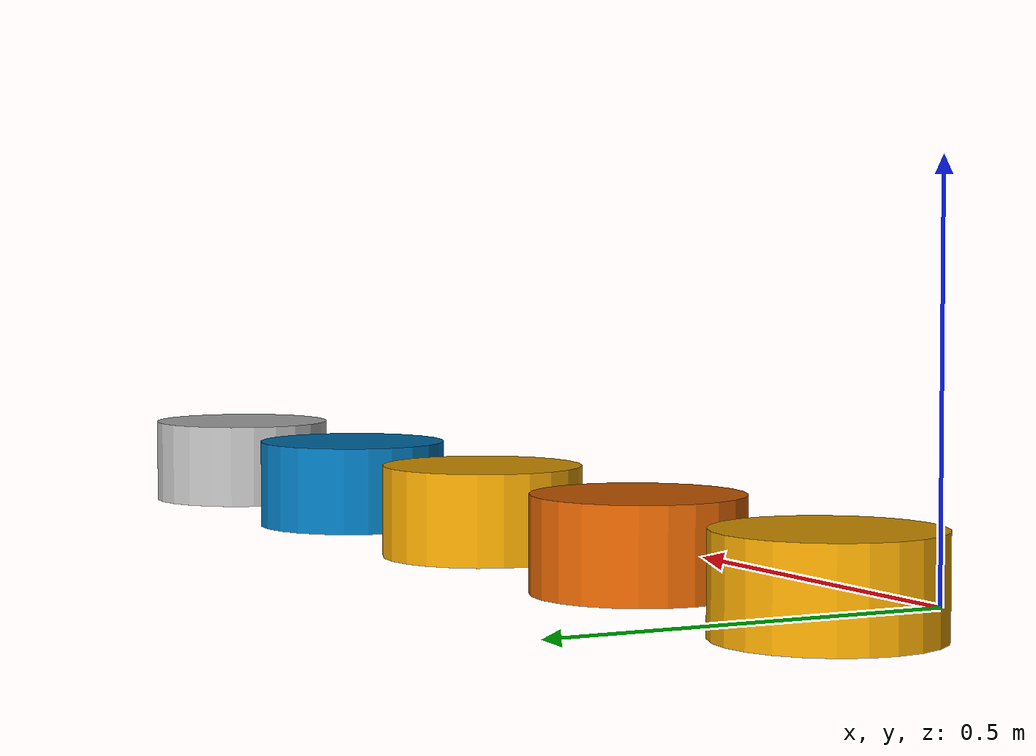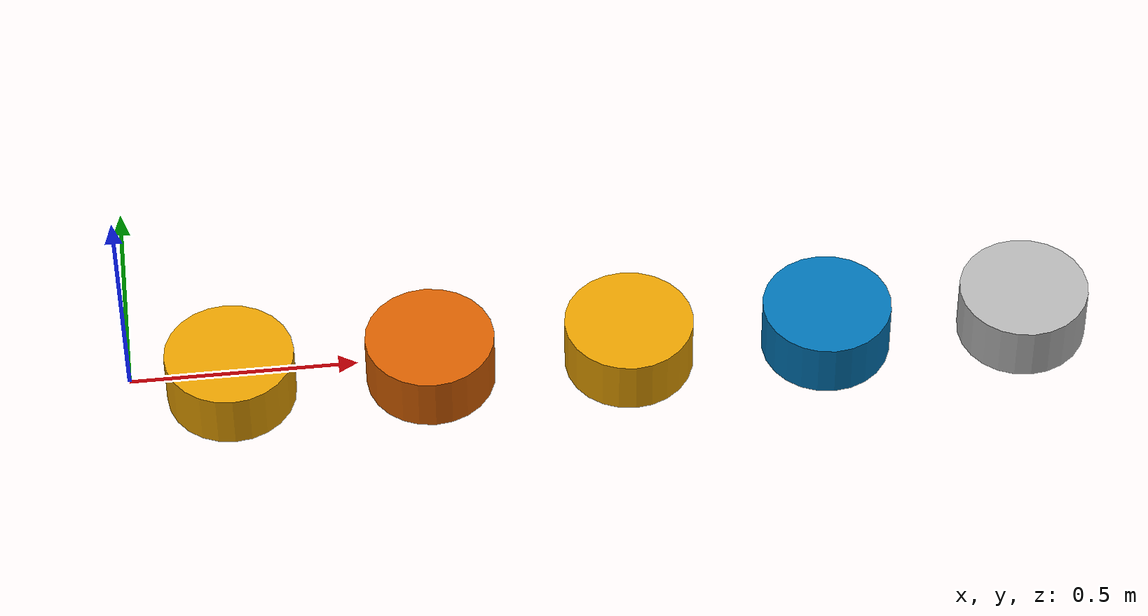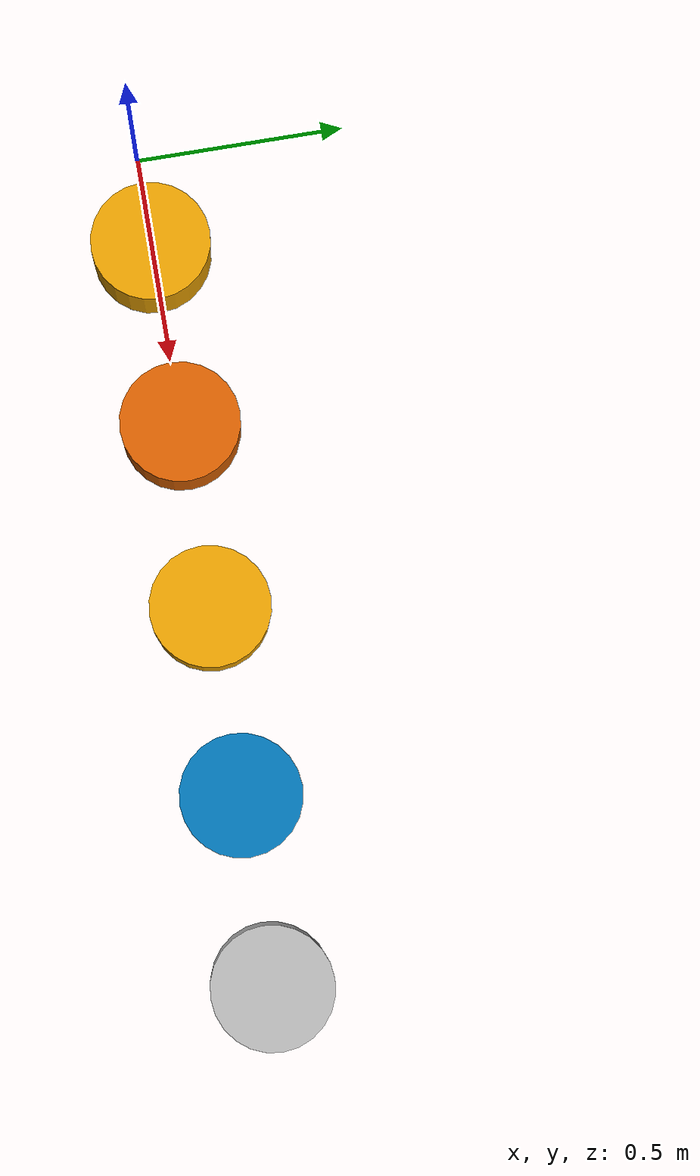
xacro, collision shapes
<?xml version="1.0"?>
<robot
    xmlns:xacro="http://www.ros.org/wiki/xacro" name="hydrus3" >

  <xacro:include filename="$(find hydrus)/urdf/hydrus3/hydrus3_common.xacro" />
  <xacro:include filename="$(find hydrus)/urdf/hydrus3/hydrus3_link.urdf.xacro" />

  <xacro:hydrus3_link self="1" child="2" rotor_direction="-1" general="false" fc="false" pc="true"  />
  <xacro:hydrus3_link self="2" child="3" rotor_direction="1" general="true" fc="false" pc="false" />
  <xacro:hydrus3_link self="3" child="4" rotor_direction="-1" general="false" fc="true" pc="false" />
  <xacro:hydrus3_link self="4" child="5" rotor_direction="1" general="true" fc="false" pc="false" />
  <xacro:hydrus3_link self="5" child="5" rotor_direction="-1" general="false" fc="false" pc="false" />

</robot>

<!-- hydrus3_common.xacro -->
<robot
    xmlns:xacro="http://www.ros.org/wiki/xacro" name="hydrus3_common" >

  <xacro:property name="pi" value="3.1415926535897931" />
  <!-- kinematics [m] -->
  <xacro:property name="link_length" value=".44" />
  <xacro:property name="link_rod_length" value=".4" />
  <xacro:property name="protector_radius" value=".1425" />
  <xacro:property name="link_joint_offset" value="-0.205" />
  <xacro:property name="rotor_radius" value=".015" />
  <xacro:property name="rotor_height" value=".05" />
  <xacro:property name="pc_offset" value="-0.189" /> <!-- from link_cetner -->
  <xacro:property name="fc_offset" value="0.166" /> <!-- from link_cetner -->

  <!-- inertial parameter -->
  <!-- mass [Kg] -->
  <xacro:property name="link_rod_mass" value="0.1" />
  <xacro:property name="link_center_mass" value=".241" />
  <xacro:property name="joint_mass" value=".0785" />
  <xacro:property name="protector_mass" value=".048" />
  <xacro:property name="protector_holder_mass" value=".047" />
  <xacro:property name="fc_mass" value=".022" />
  <xacro:property name="pc_mass" value=".104" />
  <xacro:property name="rotor_mass" value=".05" /> <!-- exclude from center mass -->

  <!-- inertial [N*m*m] -->
  <xacro:property name="link_rod_inertia" value="${link_rod_mass * link_rod_length * link_rod_length /12}" /> <!-- mass * dist * dist -->
  <xacro:property name="protector_inertia" value="${protector_mass * protector_radius * protector_radius}" /> <!-- mass * dist * dist -->
  <xacro:property name="protector_holder_inertia" value="${protector_holder_mass * protector_radius * protector_radius}" /> <!-- mass * dist * dist -->

  <!-- dynamics [N] -->
  <xacro:property name="max_force" value="10" />

  <xacro:macro name="link_model" params="type">
    <collision>
      <origin rpy="0 0 0" xyz="${link_length* 0.5} 0 0"/>
      <geometry>
        <cylinder length="0.13" radius="${protector_radius}"/>
      </geometry>
    </collision>

    <visual>
      <origin rpy="${-pi/2} 0 0" xyz="${link_length* 0.5} 0 0"/>
      <geometry>
        <mesh filename="package://hydrus/urdf/hydrus3/mesh/hydrus3_link${type}.dae"/>
      </geometry>
    </visual>
  </xacro:macro>

  <xacro:macro name="extra_module" params="name parent mass offset">
    <joint name="link2${name}" type="fixed">
      <parent link="link${parent}"/>
      <child link="${name}"/>
      <origin rpy="0 0 0" xyz="${offset} 0 0"/>
      <axis xyz="0 0 1"/>
    </joint>
    <link name="${name}">
      <inertial>
        <origin xyz="0 0 0" rpy="0 0 0"/>
        <mass value="${mass}"/>
        <inertia
            ixx="0.00001" ixy="0.0" ixz="0.0"
            iyy="0.00001" iyz="0.0"
            izz="0.00002"/>
      </inertial>
    </link>
  </xacro:macro>

  <!-- friction -->
  <xacro:macro name="friction" params="self">
    <gazebo reference="link${self}">
      <mu1>0.0001</mu1>
      <mu2>0.0001</mu2>
    </gazebo>
  </xacro:macro>

  <xacro:macro name="damping_factor" params="link">
    <gazebo reference="${link}">
      <dampingFactor>0.00</dampingFactor>
    </gazebo>
  </xacro:macro>

</robot>

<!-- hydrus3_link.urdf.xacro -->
<robot
    xmlns:xacro="http://www.ros.org/wiki/xacro" name="hydrus3_link" >

  <!-- D-H kai description(different from prof.nakamura) -->
  <xacro:macro name="hydrus3_link" params="self child rotor_direction general fc pc">

    <!-- link -->
    <link name="link${self}">
      <!-- common inertial -->
      <inertial>
        <origin xyz="${link_length* 0.5} 0 0" rpy="0 0 0"/>
        <mass value="${link_rod_mass + link_center_mass + protector_mass + protector_holder_mass - rotor_mass}" /> <!-- exclude from center mass -->
        <inertia
            ixx="${protector_inertia / 2}" ixy="0.0" ixz="0.0"
            iyy="${link_rod_inertia + protector_holder_inertia + protector_inertia /2}" iyz="0.0"
            izz="${link_rod_inertia + protector_holder_inertia + protector_inertia}"/>
      </inertial>

      <!-- sepcial inertia & visual & collision -->
      <!-- head -->
      <xacro:if value="${self == 1}">
        <xacro:link_model type="1" />
      </xacro:if>

      <!-- tail -->
      <xacro:if value="${self == child}">
        <xacro:link_model type="4" />
      </xacro:if>

      <!-- fc -->
      <xacro:if value="${fc}">
        <xacro:link_model type="2" />
      </xacro:if>

      <!-- pc: no -->

      <!-- general -->
      <xacro:if value="${general}">
        <xacro:link_model type="3" />
      </xacro:if>
    </link>
    <xacro:damping_factor link ="link${self}"/>

    <!-- rotor -->
    <joint name="rotor${self}" type="continuous">
      <limit effort="100.0" lower="0" upper="${max_force}" velocity="0.5"/> <!-- force range -->
      <parent link="link${self}"/>
      <child link="thrust${self}"/>
      <origin rpy="0 0 0" xyz="${link_length* 0.5} 0 0"/>
      <axis xyz="0 0 ${rotor_direction}"/>
    </joint>

    <link name="thrust${self}">
      <!-- visual & collisiont -->
      <inertial>
        <origin xyz="0 0 0" rpy="0 0 0"/>
        <mass value="${rotor_mass}"/>
        <inertia
            ixx="${rotor_mass * .25 * rotor_radius * rotor_radius}" ixy="0.0" ixz="0.0"
            iyy="${rotor_mass * .25 * rotor_radius * rotor_radius}" iyz="0.0"
            izz="${rotor_mass * .5 * rotor_radius * rotor_radius}"/>
      </inertial>
    </link>
    <xacro:damping_factor link ="thrust${self}"/>

    <!-- extra module -->
    <!-- head -->
    <xacro:if value="${self == 1}">
      <!-- dummy root link for KDL -->
      <link name="root">
        <inertial>
          <origin xyz="0 0 0" rpy="0 0 0"/>
          <mass value="0.00001"/>
          <inertia
              ixx="0.000001" ixy="0.0" ixz="0.0"
              iyy="0.000001" iyz="0.0"
              izz="0.000002"/>
        </inertial>
      </link>
      <joint name="root_joint" type="fixed">
        <parent link="root"/>
        <child link="link${self}"/>
        <origin rpy="0 0 0" xyz="0 0 0"/>
        <axis xyz="0 0 1"/>
      </joint>
    </xacro:if>

    <!-- pc -->
    <xacro:if value="${pc}">
      <xacro:extra_module name = "pc" parent = "${self}" mass = "${pc_mass}" offset = "${link_length* 0.5 + pc_offset}" />
    </xacro:if>

    <!-- fc -->
    <xacro:if value="${fc}">
      <xacro:extra_module name = "fc" parent = "${self}" mass = "${fc_mass}" offset = "${link_length* 0.5 + fc_offset}" />
    </xacro:if>

    <!-- joint -->
    <xacro:unless value="${self == child}">
      <joint name="joint${self}" type="revolute">
        <limit effort="3.1" lower="-1.57" upper="1.57" velocity="0.5"/>
        <parent link="link${self}"/>
        <child link="link${child}"/>
        <origin rpy="0 0 0" xyz="${link_length} 0 0"/>
        <axis xyz="0 0 1"/>
        <dynamics damping="0.8" friction="0.05"/>
      </joint>

      <xacro:extra_module name = "joint${self}_module" parent = "${child}" mass = "${joint_mass}" offset = "${link_length* 0.5 + link_joint_offset}" /> <!-- special -->
    </xacro:unless>

    <!-- hardware interface -->
    <xacro:unless value="${self == child}">
      <transmission name="joint_tran${self}">
        <type>transmission_interface/SimpleTransmission</type>
        <joint name="joint${self}">
          <!-- TODO: effort is torque, maybe position is enough -->
          <hardwareInterface>hardware_interface/EffortJointInterface</hardwareInterface>
        </joint>
        <actuator name="servo{self}">
          <!-- TODO: effort is torque, maybe position is enough -->
          <hardwareInterface>hardware_interface/EffortJointInterface</hardwareInterface>
          <mechanicalReduction>1</mechanicalReduction>
        </actuator>
      </transmission>
    </xacro:unless>

    <transmission name="rotor_tran${self}">
      <type>transmission_interface/SimpleTransmission</type>
      <joint name="rotor${self}">
        <!-- TODO: effort is torque, maybe position is enough -->
        <hardwareInterface>RotorInterface</hardwareInterface>
      </joint>
      <actuator name="rotor${self}">
        <!-- TODO: effort is torque, maybe position is enough -->
        <hardwareInterface>RotorInterface</hardwareInterface>
        <mechanicalReduction>1</mechanicalReduction>
      </actuator>
    </transmission>

    <xacro:friction self ="${self}"/>

  </xacro:macro>

</robot>
